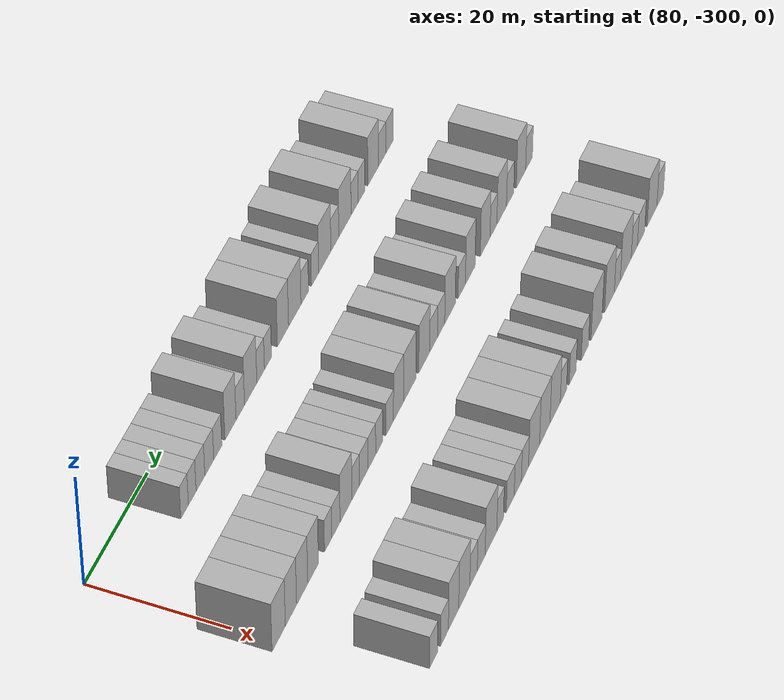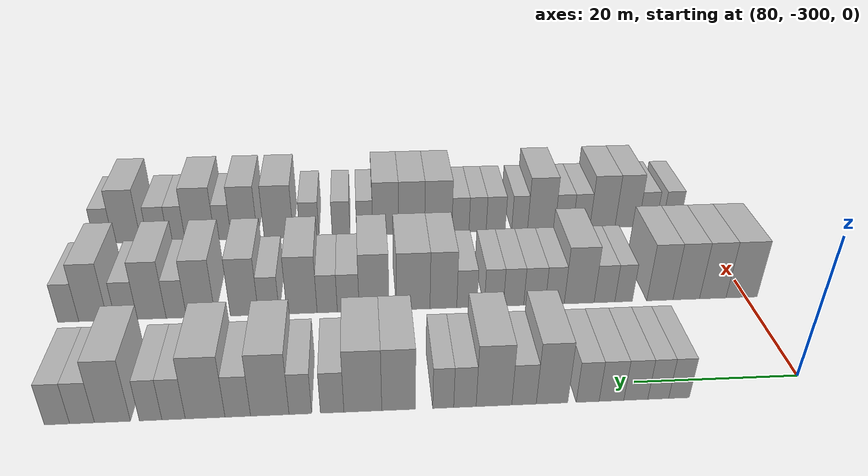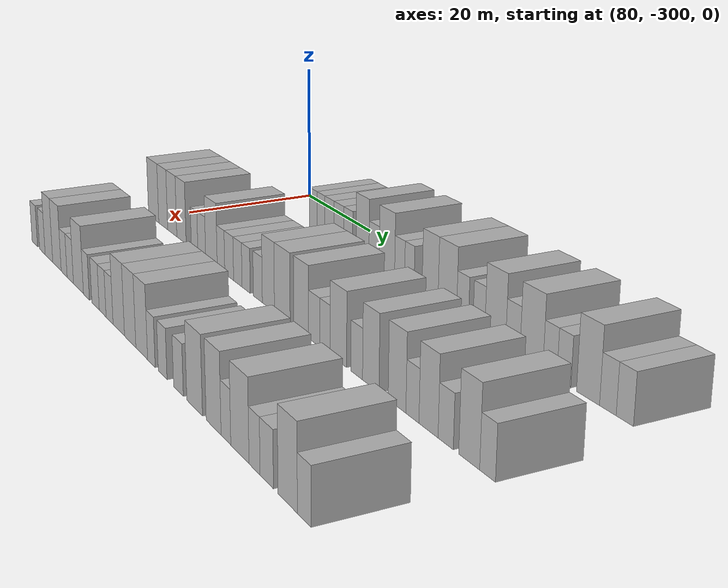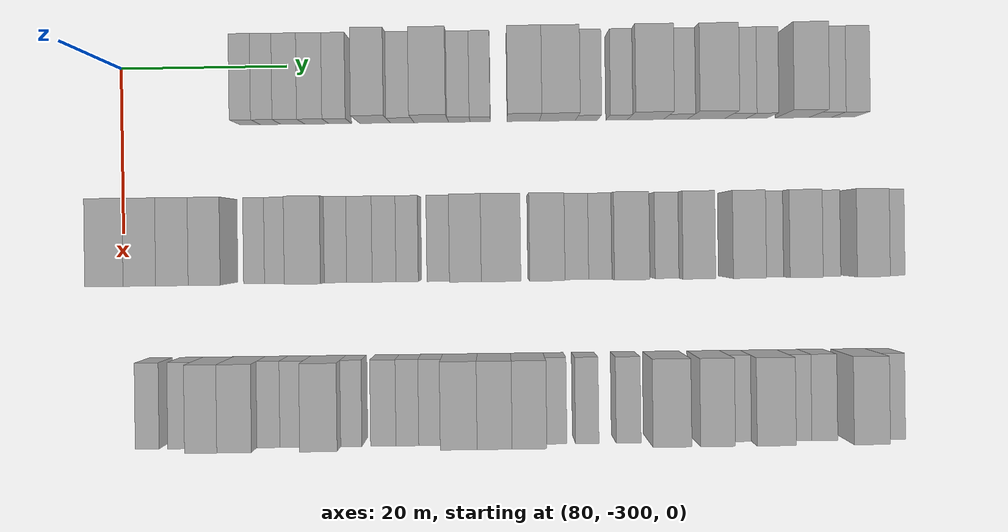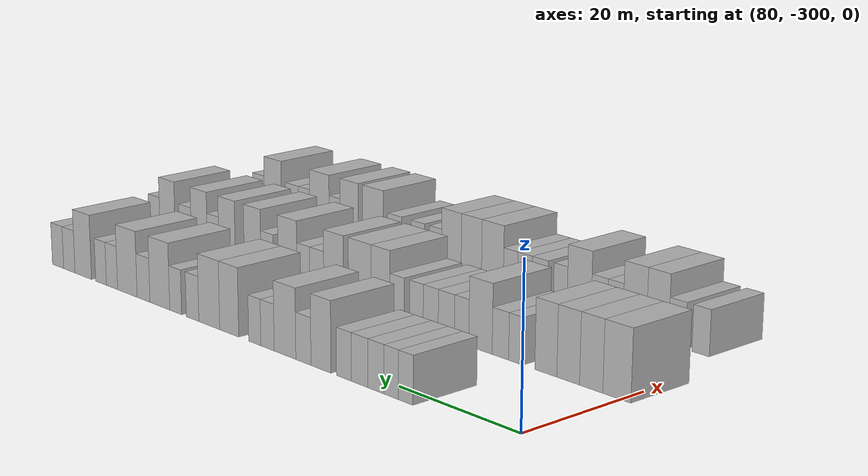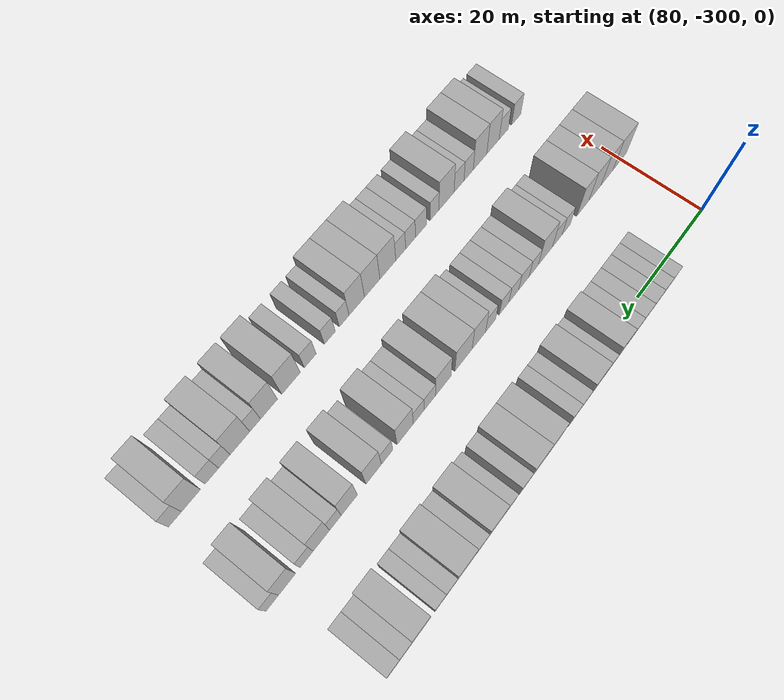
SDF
<sdf version="1.6">
 <world name="default">
  <model name="building_526">
   <static>1</static>
   <pose>82.0000 -284.4329 0 0.000000 0.000000 0.000000</pose>
   <link name="link">
    <pose>0 0 3.00 0 0 0</pose>
    <collision name="collision"><geometry><box><size>10.0000 2.4698 6.0000</size></box></geometry></collision>
    <visual name="visual">
     <cast_shadows>0</cast_shadows>
     <geometry><box><size>10.0000 2.4698 6.0000</size></box></geometry>
     <material>
      <script>
       <uri>model://HANNAS_wall/materials/scripts</uri>
       <uri>model://HANNAS_wall/materials/textures</uri>
       <name>vrc/HANNAS_wall</name>
      </script>
     </material>
    </visual>
   </link>
  </model>
  <model name="building_527">
   <static>1</static>
   <pose>82.0000 -281.9517 0 0.000000 0.000000 0.000000</pose>
   <link name="link">
    <pose>0 0 3.00 0 0 0</pose>
    <collision name="collision"><geometry><box><size>10.0000 2.4927 6.0000</size></box></geometry></collision>
    <visual name="visual">
     <cast_shadows>0</cast_shadows>
     <geometry><box><size>10.0000 2.4927 6.0000</size></box></geometry>
     <material>
      <script>
       <uri>model://HANNAS_wall/materials/scripts</uri>
       <uri>model://HANNAS_wall/materials/textures</uri>
       <name>vrc/HANNAS_wall</name>
      </script>
     </material>
    </visual>
   </link>
  </model>
  <model name="building_528">
   <static>1</static>
   <pose>82.0000 -279.2812 0 0.000000 0.000000 0.000000</pose>
   <link name="link">
    <pose>0 0 3.00 0 0 0</pose>
    <collision name="collision"><geometry><box><size>10.0000 2.8483 6.0000</size></box></geometry></collision>
    <visual name="visual">
     <cast_shadows>0</cast_shadows>
     <geometry><box><size>10.0000 2.8483 6.0000</size></box></geometry>
     <material>
      <script>
       <uri>model://HANNAS_wall/materials/scripts</uri>
       <uri>model://HANNAS_wall/materials/textures</uri>
       <name>vrc/HANNAS_wall</name>
      </script>
     </material>
    </visual>
   </link>
  </model>
  <model name="building_529">
   <static>1</static>
   <pose>82.0000 -276.3931 0 0.000000 0.000000 0.000000</pose>
   <link name="link">
    <pose>0 0 3.00 0 0 0</pose>
    <collision name="collision"><geometry><box><size>10.0000 2.9280 6.0000</size></box></geometry></collision>
    <visual name="visual">
     <cast_shadows>0</cast_shadows>
     <geometry><box><size>10.0000 2.9280 6.0000</size></box></geometry>
     <material>
      <script>
       <uri>model://HANNAS_wall/materials/scripts</uri>
       <uri>model://HANNAS_wall/materials/textures</uri>
       <name>vrc/HANNAS_wall</name>
      </script>
     </material>
    </visual>
   </link>
  </model>
  <model name="building_530">
   <static>1</static>
   <pose>82.0000 -273.5804 0 0.000000 0.000000 0.000000</pose>
   <link name="link">
    <pose>0 0 3.00 0 0 0</pose>
    <collision name="collision"><geometry><box><size>10.0000 2.6973 6.0000</size></box></geometry></collision>
    <visual name="visual">
     <cast_shadows>0</cast_shadows>
     <geometry><box><size>10.0000 2.6973 6.0000</size></box></geometry>
     <material>
      <script>
       <uri>model://HANNAS_wall/materials/scripts</uri>
       <uri>model://HANNAS_wall/materials/textures</uri>
       <name>vrc/HANNAS_wall</name>
      </script>
     </material>
    </visual>
   </link>
  </model>
  <model name="building_531">
   <static>1</static>
   <pose>82.0000 -269.3748 0 0.000000 0.000000 0.000000</pose>
   <link name="link">
    <pose>0 0 4.50 0 0 0</pose>
    <collision name="collision"><geometry><box><size>10.0000 3.7138 9.0000</size></box></geometry></collision>
    <visual name="visual">
     <cast_shadows>0</cast_shadows>
     <geometry><box><size>10.0000 3.7138 9.0000</size></box></geometry>
     <material>
      <script>
       <uri>model://HANNAS_wall/materials/scripts</uri>
       <uri>model://HANNAS_wall/materials/textures</uri>
       <name>vrc/HANNAS_wall</name>
      </script>
     </material>
    </visual>
   </link>
  </model>
  <model name="building_532">
   <static>1</static>
   <pose>82.0000 -266.0852 0 0.000000 0.000000 0.000000</pose>
   <link name="link">
    <pose>0 0 3.00 0 0 0</pose>
    <collision name="collision"><geometry><box><size>10.0000 2.8654 6.0000</size></box></geometry></collision>
    <visual name="visual">
     <cast_shadows>0</cast_shadows>
     <geometry><box><size>10.0000 2.8654 6.0000</size></box></geometry>
     <material>
      <script>
       <uri>model://HANNAS_wall/materials/scripts</uri>
       <uri>model://HANNAS_wall/materials/textures</uri>
       <name>vrc/HANNAS_wall</name>
      </script>
     </material>
    </visual>
   </link>
  </model>
  <model name="building_533">
   <static>1</static>
   <pose>82.0000 -262.5669 0 0.000000 0.000000 0.000000</pose>
   <link name="link">
    <pose>0 0 4.50 0 0 0</pose>
    <collision name="collision"><geometry><box><size>10.0000 4.1712 9.0000</size></box></geometry></collision>
    <visual name="visual">
     <cast_shadows>0</cast_shadows>
     <geometry><box><size>10.0000 4.1712 9.0000</size></box></geometry>
     <material>
      <script>
       <uri>model://HANNAS_wall/materials/scripts</uri>
       <uri>model://HANNAS_wall/materials/textures</uri>
       <name>vrc/HANNAS_wall</name>
      </script>
     </material>
    </visual>
   </link>
  </model>
  <model name="building_534">
   <static>1</static>
   <pose>82.0000 -259.1760 0 0.000000 0.000000 0.000000</pose>
   <link name="link">
    <pose>0 0 3.00 0 0 0</pose>
    <collision name="collision"><geometry><box><size>10.0000 2.6106 6.0000</size></box></geometry></collision>
    <visual name="visual">
     <cast_shadows>0</cast_shadows>
     <geometry><box><size>10.0000 2.6106 6.0000</size></box></geometry>
     <material>
      <script>
       <uri>model://HANNAS_wall/materials/scripts</uri>
       <uri>model://HANNAS_wall/materials/textures</uri>
       <name>vrc/HANNAS_wall</name>
      </script>
     </material>
    </visual>
   </link>
  </model>
  <model name="building_535">
   <static>1</static>
   <pose>82.0000 -256.6536 0 0.000000 0.000000 0.000000</pose>
   <link name="link">
    <pose>0 0 3.00 0 0 0</pose>
    <collision name="collision"><geometry><box><size>10.0000 2.4341 6.0000</size></box></geometry></collision>
    <visual name="visual">
     <cast_shadows>0</cast_shadows>
     <geometry><box><size>10.0000 2.4341 6.0000</size></box></geometry>
     <material>
      <script>
       <uri>model://HANNAS_wall/materials/scripts</uri>
       <uri>model://HANNAS_wall/materials/textures</uri>
       <name>vrc/HANNAS_wall</name>
      </script>
     </material>
    </visual>
   </link>
  </model>
  <model name="building_536">
   <static>1</static>
   <pose>82.0000 -251.4886 0 0.000000 0.000000 0.000000</pose>
   <link name="link">
    <pose>0 0 4.50 0 0 0</pose>
    <collision name="collision"><geometry><box><size>10.0000 3.8959 9.0000</size></box></geometry></collision>
    <visual name="visual">
     <cast_shadows>0</cast_shadows>
     <geometry><box><size>10.0000 3.8959 9.0000</size></box></geometry>
     <material>
      <script>
       <uri>model://HANNAS_wall/materials/scripts</uri>
       <uri>model://HANNAS_wall/materials/textures</uri>
       <name>vrc/HANNAS_wall</name>
      </script>
     </material>
    </visual>
   </link>
  </model>
  <model name="building_537">
   <static>1</static>
   <pose>82.0000 -247.3610 0 0.000000 0.000000 0.000000</pose>
   <link name="link">
    <pose>0 0 4.50 0 0 0</pose>
    <collision name="collision"><geometry><box><size>10.0000 4.3593 9.0000</size></box></geometry></collision>
    <visual name="visual">
     <cast_shadows>0</cast_shadows>
     <geometry><box><size>10.0000 4.3593 9.0000</size></box></geometry>
     <material>
      <script>
       <uri>model://HANNAS_wall/materials/scripts</uri>
       <uri>model://HANNAS_wall/materials/textures</uri>
       <name>vrc/HANNAS_wall</name>
      </script>
     </material>
    </visual>
   </link>
  </model>
  <model name="building_538">
   <static>1</static>
   <pose>82.0000 -243.8351 0 0.000000 0.000000 0.000000</pose>
   <link name="link">
    <pose>0 0 3.00 0 0 0</pose>
    <collision name="collision"><geometry><box><size>10.0000 2.6925 6.0000</size></box></geometry></collision>
    <visual name="visual">
     <cast_shadows>0</cast_shadows>
     <geometry><box><size>10.0000 2.6925 6.0000</size></box></geometry>
     <material>
      <script>
       <uri>model://HANNAS_wall/materials/scripts</uri>
       <uri>model://HANNAS_wall/materials/textures</uri>
       <name>vrc/HANNAS_wall</name>
      </script>
     </material>
    </visual>
   </link>
  </model>
  <model name="building_539">
   <static>1</static>
   <pose>82.0000 -240.1941 0 0.000000 0.000000 0.000000</pose>
   <link name="link">
    <pose>0 0 3.00 0 0 0</pose>
    <collision name="collision"><geometry><box><size>10.0000 2.5895 6.0000</size></box></geometry></collision>
    <visual name="visual">
     <cast_shadows>0</cast_shadows>
     <geometry><box><size>10.0000 2.5895 6.0000</size></box></geometry>
     <material>
      <script>
       <uri>model://HANNAS_wall/materials/scripts</uri>
       <uri>model://HANNAS_wall/materials/textures</uri>
       <name>vrc/HANNAS_wall</name>
      </script>
     </material>
    </visual>
   </link>
  </model>
  <model name="building_540">
   <static>1</static>
   <pose>82.0000 -236.7106 0 0.000000 0.000000 0.000000</pose>
   <link name="link">
    <pose>0 0 4.50 0 0 0</pose>
    <collision name="collision"><geometry><box><size>10.0000 4.3775 9.0000</size></box></geometry></collision>
    <visual name="visual">
     <cast_shadows>0</cast_shadows>
     <geometry><box><size>10.0000 4.3775 9.0000</size></box></geometry>
     <material>
      <script>
       <uri>model://HANNAS_wall/materials/scripts</uri>
       <uri>model://HANNAS_wall/materials/textures</uri>
       <name>vrc/HANNAS_wall</name>
      </script>
     </material>
    </visual>
   </link>
  </model>
  <model name="building_541">
   <static>1</static>
   <pose>82.0000 -233.0728 0 0.000000 0.000000 0.000000</pose>
   <link name="link">
    <pose>0 0 3.00 0 0 0</pose>
    <collision name="collision"><geometry><box><size>10.0000 2.8980 6.0000</size></box></geometry></collision>
    <visual name="visual">
     <cast_shadows>0</cast_shadows>
     <geometry><box><size>10.0000 2.8980 6.0000</size></box></geometry>
     <material>
      <script>
       <uri>model://HANNAS_wall/materials/scripts</uri>
       <uri>model://HANNAS_wall/materials/textures</uri>
       <name>vrc/HANNAS_wall</name>
      </script>
     </material>
    </visual>
   </link>
  </model>
  <model name="building_542">
   <static>1</static>
   <pose>82.0000 -229.3777 0 0.000000 0.000000 0.000000</pose>
   <link name="link">
    <pose>0 0 4.50 0 0 0</pose>
    <collision name="collision"><geometry><box><size>10.0000 4.4922 9.0000</size></box></geometry></collision>
    <visual name="visual">
     <cast_shadows>0</cast_shadows>
     <geometry><box><size>10.0000 4.4922 9.0000</size></box></geometry>
     <material>
      <script>
       <uri>model://HANNAS_wall/materials/scripts</uri>
       <uri>model://HANNAS_wall/materials/textures</uri>
       <name>vrc/HANNAS_wall</name>
      </script>
     </material>
    </visual>
   </link>
  </model>
  <model name="building_543">
   <static>1</static>
   <pose>82.0000 -225.8178 0 0.000000 0.000000 0.000000</pose>
   <link name="link">
    <pose>0 0 3.00 0 0 0</pose>
    <collision name="collision"><geometry><box><size>10.0000 2.6275 6.0000</size></box></geometry></collision>
    <visual name="visual">
     <cast_shadows>0</cast_shadows>
     <geometry><box><size>10.0000 2.6275 6.0000</size></box></geometry>
     <material>
      <script>
       <uri>model://HANNAS_wall/materials/scripts</uri>
       <uri>model://HANNAS_wall/materials/textures</uri>
       <name>vrc/HANNAS_wall</name>
      </script>
     </material>
    </visual>
   </link>
  </model>
  <model name="building_544">
   <static>1</static>
   <pose>82.0000 -223.2350 0 0.000000 0.000000 0.000000</pose>
   <link name="link">
    <pose>0 0 3.00 0 0 0</pose>
    <collision name="collision"><geometry><box><size>10.0000 2.5381 6.0000</size></box></geometry></collision>
    <visual name="visual">
     <cast_shadows>0</cast_shadows>
     <geometry><box><size>10.0000 2.5381 6.0000</size></box></geometry>
     <material>
      <script>
       <uri>model://HANNAS_wall/materials/scripts</uri>
       <uri>model://HANNAS_wall/materials/textures</uri>
       <name>vrc/HANNAS_wall</name>
      </script>
     </material>
    </visual>
   </link>
  </model>
  <model name="building_545">
   <static>1</static>
   <pose>82.0000 -218.9621 0 0.000000 0.000000 0.000000</pose>
   <link name="link">
    <pose>0 0 4.50 0 0 0</pose>
    <collision name="collision"><geometry><box><size>10.0000 4.0076 9.0000</size></box></geometry></collision>
    <visual name="visual">
     <cast_shadows>0</cast_shadows>
     <geometry><box><size>10.0000 4.0076 9.0000</size></box></geometry>
     <material>
      <script>
       <uri>model://HANNAS_wall/materials/scripts</uri>
       <uri>model://HANNAS_wall/materials/textures</uri>
       <name>vrc/HANNAS_wall</name>
      </script>
     </material>
    </visual>
   </link>
  </model>
  <model name="building_546">
   <static>1</static>
   <pose>82.0000 -215.5682 0 0.000000 0.000000 0.000000</pose>
   <link name="link">
    <pose>0 0 3.00 0 0 0</pose>
    <collision name="collision"><geometry><box><size>10.0000 2.7802 6.0000</size></box></geometry></collision>
    <visual name="visual">
     <cast_shadows>0</cast_shadows>
     <geometry><box><size>10.0000 2.7802 6.0000</size></box></geometry>
     <material>
      <script>
       <uri>model://HANNAS_wall/materials/scripts</uri>
       <uri>model://HANNAS_wall/materials/textures</uri>
       <name>vrc/HANNAS_wall</name>
      </script>
     </material>
    </visual>
   </link>
  </model>
  <model name="building_547">
   <static>1</static>
   <pose>82.0000 -212.7780 0 0.000000 0.000000 0.000000</pose>
   <link name="link">
    <pose>0 0 3.00 0 0 0</pose>
    <collision name="collision"><geometry><box><size>10.0000 2.8003 6.0000</size></box></geometry></collision>
    <visual name="visual">
     <cast_shadows>0</cast_shadows>
     <geometry><box><size>10.0000 2.8003 6.0000</size></box></geometry>
     <material>
      <script>
       <uri>model://HANNAS_wall/materials/scripts</uri>
       <uri>model://HANNAS_wall/materials/textures</uri>
       <name>vrc/HANNAS_wall</name>
      </script>
     </material>
    </visual>
   </link>
  </model>
  <model name="building_702">
   <static>1</static>
   <pose>101.0000 -299.3965 0 0.000000 0.000000 0.000000</pose>
   <link name="link">
    <pose>0 0 4.50 0 0 0</pose>
    <collision name="collision"><geometry><box><size>10.0000 4.3397 9.0000</size></box></geometry></collision>
    <visual name="visual">
     <cast_shadows>0</cast_shadows>
     <geometry><box><size>10.0000 4.3397 9.0000</size></box></geometry>
     <material>
      <script>
       <uri>model://HANNAS_wall/materials/scripts</uri>
       <uri>model://HANNAS_wall/materials/textures</uri>
       <name>vrc/HANNAS_wall</name>
      </script>
     </material>
    </visual>
   </link>
  </model>
  <model name="building_703">
   <static>1</static>
   <pose>101.0000 -295.3795 0 0.000000 0.000000 0.000000</pose>
   <link name="link">
    <pose>0 0 4.50 0 0 0</pose>
    <collision name="collision"><geometry><box><size>10.0000 3.6944 9.0000</size></box></geometry></collision>
    <visual name="visual">
     <cast_shadows>0</cast_shadows>
     <geometry><box><size>10.0000 3.6944 9.0000</size></box></geometry>
     <material>
      <script>
       <uri>model://HANNAS_wall/materials/scripts</uri>
       <uri>model://HANNAS_wall/materials/textures</uri>
       <name>vrc/HANNAS_wall</name>
      </script>
     </material>
    </visual>
   </link>
  </model>
  <model name="building_704">
   <static>1</static>
   <pose>101.0000 -291.6914 0 0.000000 0.000000 0.000000</pose>
   <link name="link">
    <pose>0 0 4.50 0 0 0</pose>
    <collision name="collision"><geometry><box><size>10.0000 3.6819 9.0000</size></box></geometry></collision>
    <visual name="visual">
     <cast_shadows>0</cast_shadows>
     <geometry><box><size>10.0000 3.6819 9.0000</size></box></geometry>
     <material>
      <script>
       <uri>model://HANNAS_wall/materials/scripts</uri>
       <uri>model://HANNAS_wall/materials/textures</uri>
       <name>vrc/HANNAS_wall</name>
      </script>
     </material>
    </visual>
   </link>
  </model>
  <model name="building_705">
   <static>1</static>
   <pose>101.0000 -288.0410 0 0.000000 0.000000 0.000000</pose>
   <link name="link">
    <pose>0 0 4.50 0 0 0</pose>
    <collision name="collision"><geometry><box><size>10.0000 3.6188 9.0000</size></box></geometry></collision>
    <visual name="visual">
     <cast_shadows>0</cast_shadows>
     <geometry><box><size>10.0000 3.6188 9.0000</size></box></geometry>
     <material>
      <script>
       <uri>model://HANNAS_wall/materials/scripts</uri>
       <uri>model://HANNAS_wall/materials/textures</uri>
       <name>vrc/HANNAS_wall</name>
      </script>
     </material>
    </visual>
   </link>
  </model>
  <model name="building_706">
   <static>1</static>
   <pose>101.0000 -283.0204 0 0.000000 0.000000 0.000000</pose>
   <link name="link">
    <pose>0 0 3.00 0 0 0</pose>
    <collision name="collision"><geometry><box><size>10.0000 2.4225 6.0000</size></box></geometry></collision>
    <visual name="visual">
     <cast_shadows>0</cast_shadows>
     <geometry><box><size>10.0000 2.4225 6.0000</size></box></geometry>
     <material>
      <script>
       <uri>model://HANNAS_wall/materials/scripts</uri>
       <uri>model://HANNAS_wall/materials/textures</uri>
       <name>vrc/HANNAS_wall</name>
      </script>
     </material>
    </visual>
   </link>
  </model>
  <model name="building_707">
   <static>1</static>
   <pose>101.0000 -280.3881 0 0.000000 0.000000 0.000000</pose>
   <link name="link">
    <pose>0 0 3.00 0 0 0</pose>
    <collision name="collision"><geometry><box><size>10.0000 2.8422 6.0000</size></box></geometry></collision>
    <visual name="visual">
     <cast_shadows>0</cast_shadows>
     <geometry><box><size>10.0000 2.8422 6.0000</size></box></geometry>
     <material>
      <script>
       <uri>model://HANNAS_wall/materials/scripts</uri>
       <uri>model://HANNAS_wall/materials/textures</uri>
       <name>vrc/HANNAS_wall</name>
      </script>
     </material>
    </visual>
   </link>
  </model>
  <model name="building_708">
   <static>1</static>
   <pose>101.0000 -276.9197 0 0.000000 0.000000 0.000000</pose>
   <link name="link">
    <pose>0 0 4.50 0 0 0</pose>
    <collision name="collision"><geometry><box><size>10.0000 4.0945 9.0000</size></box></geometry></collision>
    <visual name="visual">
     <cast_shadows>0</cast_shadows>
     <geometry><box><size>10.0000 4.0945 9.0000</size></box></geometry>
     <material>
      <script>
       <uri>model://HANNAS_wall/materials/scripts</uri>
       <uri>model://HANNAS_wall/materials/textures</uri>
       <name>vrc/HANNAS_wall</name>
      </script>
     </material>
    </visual>
   </link>
  </model>
  <model name="building_709">
   <static>1</static>
   <pose>101.0000 -273.5784 0 0.000000 0.000000 0.000000</pose>
   <link name="link">
    <pose>0 0 3.00 0 0 0</pose>
    <collision name="collision"><geometry><box><size>10.0000 2.5881 6.0000</size></box></geometry></collision>
    <visual name="visual">
     <cast_shadows>0</cast_shadows>
     <geometry><box><size>10.0000 2.5881 6.0000</size></box></geometry>
     <material>
      <script>
       <uri>model://HANNAS_wall/materials/scripts</uri>
       <uri>model://HANNAS_wall/materials/textures</uri>
       <name>vrc/HANNAS_wall</name>
      </script>
     </material>
    </visual>
   </link>
  </model>
  <model name="building_710">
   <static>1</static>
   <pose>101.0000 -270.8112 0 0.000000 0.000000 0.000000</pose>
   <link name="link">
    <pose>0 0 3.00 0 0 0</pose>
    <collision name="collision"><geometry><box><size>10.0000 2.9464 6.0000</size></box></geometry></collision>
    <visual name="visual">
     <cast_shadows>0</cast_shadows>
     <geometry><box><size>10.0000 2.9464 6.0000</size></box></geometry>
     <material>
      <script>
       <uri>model://HANNAS_wall/materials/scripts</uri>
       <uri>model://HANNAS_wall/materials/textures</uri>
       <name>vrc/HANNAS_wall</name>
      </script>
     </material>
    </visual>
   </link>
  </model>
  <model name="building_711">
   <static>1</static>
   <pose>101.0000 -267.9586 0 0.000000 0.000000 0.000000</pose>
   <link name="link">
    <pose>0 0 3.00 0 0 0</pose>
    <collision name="collision"><geometry><box><size>10.0000 2.7590 6.0000</size></box></geometry></collision>
    <visual name="visual">
     <cast_shadows>0</cast_shadows>
     <geometry><box><size>10.0000 2.7590 6.0000</size></box></geometry>
     <material>
      <script>
       <uri>model://HANNAS_wall/materials/scripts</uri>
       <uri>model://HANNAS_wall/materials/textures</uri>
       <name>vrc/HANNAS_wall</name>
      </script>
     </material>
    </visual>
   </link>
  </model>
  <model name="building_712">
   <static>1</static>
   <pose>101.0000 -265.2867 0 0.000000 0.000000 0.000000</pose>
   <link name="link">
    <pose>0 0 3.00 0 0 0</pose>
    <collision name="collision"><geometry><box><size>10.0000 2.5847 6.0000</size></box></geometry></collision>
    <visual name="visual">
     <cast_shadows>0</cast_shadows>
     <geometry><box><size>10.0000 2.5847 6.0000</size></box></geometry>
     <material>
      <script>
       <uri>model://HANNAS_wall/materials/scripts</uri>
       <uri>model://HANNAS_wall/materials/textures</uri>
       <name>vrc/HANNAS_wall</name>
      </script>
     </material>
    </visual>
   </link>
  </model>
  <model name="building_713">
   <static>1</static>
   <pose>101.0000 -261.6266 0 0.000000 0.000000 0.000000</pose>
   <link name="link">
    <pose>0 0 3.00 0 0 0</pose>
    <collision name="collision"><geometry><box><size>10.0000 2.7356 6.0000</size></box></geometry></collision>
    <visual name="visual">
     <cast_shadows>0</cast_shadows>
     <geometry><box><size>10.0000 2.7356 6.0000</size></box></geometry>
     <material>
      <script>
       <uri>model://HANNAS_wall/materials/scripts</uri>
       <uri>model://HANNAS_wall/materials/textures</uri>
       <name>vrc/HANNAS_wall</name>
      </script>
     </material>
    </visual>
   </link>
  </model>
  <model name="building_714">
   <static>1</static>
   <pose>101.0000 -258.4552 0 0.000000 0.000000 0.000000</pose>
   <link name="link">
    <pose>0 0 4.50 0 0 0</pose>
    <collision name="collision"><geometry><box><size>10.0000 3.6072 9.0000</size></box></geometry></collision>
    <visual name="visual">
     <cast_shadows>0</cast_shadows>
     <geometry><box><size>10.0000 3.6072 9.0000</size></box></geometry>
     <material>
      <script>
       <uri>model://HANNAS_wall/materials/scripts</uri>
       <uri>model://HANNAS_wall/materials/textures</uri>
       <name>vrc/HANNAS_wall</name>
      </script>
     </material>
    </visual>
   </link>
  </model>
  <model name="building_715">
   <static>1</static>
   <pose>101.0000 -254.4053 0 0.000000 0.000000 0.000000</pose>
   <link name="link">
    <pose>0 0 4.50 0 0 0</pose>
    <collision name="collision"><geometry><box><size>10.0000 4.4926 9.0000</size></box></geometry></collision>
    <visual name="visual">
     <cast_shadows>0</cast_shadows>
     <geometry><box><size>10.0000 4.4926 9.0000</size></box></geometry>
     <material>
      <script>
       <uri>model://HANNAS_wall/materials/scripts</uri>
       <uri>model://HANNAS_wall/materials/textures</uri>
       <name>vrc/HANNAS_wall</name>
      </script>
     </material>
    </visual>
   </link>
  </model>
  <model name="building_716">
   <static>1</static>
   <pose>101.0000 -249.1616 0 0.000000 0.000000 0.000000</pose>
   <link name="link">
    <pose>0 0 4.50 0 0 0</pose>
    <collision name="collision"><geometry><box><size>10.0000 3.9947 9.0000</size></box></geometry></collision>
    <visual name="visual">
     <cast_shadows>0</cast_shadows>
     <geometry><box><size>10.0000 3.9947 9.0000</size></box></geometry>
     <material>
      <script>
       <uri>model://HANNAS_wall/materials/scripts</uri>
       <uri>model://HANNAS_wall/materials/textures</uri>
       <name>vrc/HANNAS_wall</name>
      </script>
     </material>
    </visual>
   </link>
  </model>
  <model name="building_717">
   <static>1</static>
   <pose>101.0000 -245.7098 0 0.000000 0.000000 0.000000</pose>
   <link name="link">
    <pose>0 0 3.00 0 0 0</pose>
    <collision name="collision"><geometry><box><size>10.0000 2.9088 6.0000</size></box></geometry></collision>
    <visual name="visual">
     <cast_shadows>0</cast_shadows>
     <geometry><box><size>10.0000 2.9088 6.0000</size></box></geometry>
     <material>
      <script>
       <uri>model://HANNAS_wall/materials/scripts</uri>
       <uri>model://HANNAS_wall/materials/textures</uri>
       <name>vrc/HANNAS_wall</name>
      </script>
     </material>
    </visual>
   </link>
  </model>
  <model name="building_718">
   <static>1</static>
   <pose>101.0000 -242.9103 0 0.000000 0.000000 0.000000</pose>
   <link name="link">
    <pose>0 0 3.00 0 0 0</pose>
    <collision name="collision"><geometry><box><size>10.0000 2.6903 6.0000</size></box></geometry></collision>
    <visual name="visual">
     <cast_shadows>0</cast_shadows>
     <geometry><box><size>10.0000 2.6903 6.0000</size></box></geometry>
     <material>
      <script>
       <uri>model://HANNAS_wall/materials/scripts</uri>
       <uri>model://HANNAS_wall/materials/textures</uri>
       <name>vrc/HANNAS_wall</name>
      </script>
     </material>
    </visual>
   </link>
  </model>
  <model name="building_719">
   <static>1</static>
   <pose>101.0000 -239.5597 0 0.000000 0.000000 0.000000</pose>
   <link name="link">
    <pose>0 0 4.50 0 0 0</pose>
    <collision name="collision"><geometry><box><size>10.0000 4.0108 9.0000</size></box></geometry></collision>
    <visual name="visual">
     <cast_shadows>0</cast_shadows>
     <geometry><box><size>10.0000 4.0108 9.0000</size></box></geometry>
     <material>
      <script>
       <uri>model://HANNAS_wall/materials/scripts</uri>
       <uri>model://HANNAS_wall/materials/textures</uri>
       <name>vrc/HANNAS_wall</name>
      </script>
     </material>
    </visual>
   </link>
  </model>
  <model name="building_720">
   <static>1</static>
   <pose>101.0000 -235.1753 0 0.000000 0.000000 0.000000</pose>
   <link name="link">
    <pose>0 0 3.00 0 0 0</pose>
    <collision name="collision"><geometry><box><size>10.0000 2.7579 6.0000</size></box></geometry></collision>
    <visual name="visual">
     <cast_shadows>0</cast_shadows>
     <geometry><box><size>10.0000 2.7579 6.0000</size></box></geometry>
     <material>
      <script>
       <uri>model://HANNAS_wall/materials/scripts</uri>
       <uri>model://HANNAS_wall/materials/textures</uri>
       <name>vrc/HANNAS_wall</name>
      </script>
     </material>
    </visual>
   </link>
  </model>
  <model name="building_721">
   <static>1</static>
   <pose>101.0000 -231.9455 0 0.000000 0.000000 0.000000</pose>
   <link name="link">
    <pose>0 0 4.50 0 0 0</pose>
    <collision name="collision"><geometry><box><size>10.0000 3.7016 9.0000</size></box></geometry></collision>
    <visual name="visual">
     <cast_shadows>0</cast_shadows>
     <geometry><box><size>10.0000 3.7016 9.0000</size></box></geometry>
     <material>
      <script>
       <uri>model://HANNAS_wall/materials/scripts</uri>
       <uri>model://HANNAS_wall/materials/textures</uri>
       <name>vrc/HANNAS_wall</name>
      </script>
     </material>
    </visual>
   </link>
  </model>
  <model name="building_722">
   <static>1</static>
   <pose>101.0000 -226.2180 0 0.000000 0.000000 0.000000</pose>
   <link name="link">
    <pose>0 0 4.50 0 0 0</pose>
    <collision name="collision"><geometry><box><size>10.0000 3.7534 9.0000</size></box></geometry></collision>
    <visual name="visual">
     <cast_shadows>0</cast_shadows>
     <geometry><box><size>10.0000 3.7534 9.0000</size></box></geometry>
     <material>
      <script>
       <uri>model://HANNAS_wall/materials/scripts</uri>
       <uri>model://HANNAS_wall/materials/textures</uri>
       <name>vrc/HANNAS_wall</name>
      </script>
     </material>
    </visual>
   </link>
  </model>
  <model name="building_723">
   <static>1</static>
   <pose>101.0000 -223.0095 0 0.000000 0.000000 0.000000</pose>
   <link name="link">
    <pose>0 0 3.00 0 0 0</pose>
    <collision name="collision"><geometry><box><size>10.0000 2.6635 6.0000</size></box></geometry></collision>
    <visual name="visual">
     <cast_shadows>0</cast_shadows>
     <geometry><box><size>10.0000 2.6635 6.0000</size></box></geometry>
     <material>
      <script>
       <uri>model://HANNAS_wall/materials/scripts</uri>
       <uri>model://HANNAS_wall/materials/textures</uri>
       <name>vrc/HANNAS_wall</name>
      </script>
     </material>
    </visual>
   </link>
  </model>
  <model name="building_724">
   <static>1</static>
   <pose>101.0000 -219.8018 0 0.000000 0.000000 0.000000</pose>
   <link name="link">
    <pose>0 0 4.50 0 0 0</pose>
    <collision name="collision"><geometry><box><size>10.0000 3.7519 9.0000</size></box></geometry></collision>
    <visual name="visual">
     <cast_shadows>0</cast_shadows>
     <geometry><box><size>10.0000 3.7519 9.0000</size></box></geometry>
     <material>
      <script>
       <uri>model://HANNAS_wall/materials/scripts</uri>
       <uri>model://HANNAS_wall/materials/textures</uri>
       <name>vrc/HANNAS_wall</name>
      </script>
     </material>
    </visual>
   </link>
  </model>
  <model name="building_725">
   <static>1</static>
   <pose>101.0000 -216.4906 0 0.000000 0.000000 0.000000</pose>
   <link name="link">
    <pose>0 0 3.00 0 0 0</pose>
    <collision name="collision"><geometry><box><size>10.0000 2.8705 6.0000</size></box></geometry></collision>
    <visual name="visual">
     <cast_shadows>0</cast_shadows>
     <geometry><box><size>10.0000 2.8705 6.0000</size></box></geometry>
     <material>
      <script>
       <uri>model://HANNAS_wall/materials/scripts</uri>
       <uri>model://HANNAS_wall/materials/textures</uri>
       <name>vrc/HANNAS_wall</name>
      </script>
     </material>
    </visual>
   </link>
  </model>
  <model name="building_726">
   <static>1</static>
   <pose>101.0000 -212.1906 0 0.000000 0.000000 0.000000</pose>
   <link name="link">
    <pose>0 0 4.50 0 0 0</pose>
    <collision name="collision"><geometry><box><size>10.0000 3.7295 9.0000</size></box></geometry></collision>
    <visual name="visual">
     <cast_shadows>0</cast_shadows>
     <geometry><box><size>10.0000 3.7295 9.0000</size></box></geometry>
     <material>
      <script>
       <uri>model://HANNAS_wall/materials/scripts</uri>
       <uri>model://HANNAS_wall/materials/textures</uri>
       <name>vrc/HANNAS_wall</name>
      </script>
     </material>
    </visual>
   </link>
  </model>
  <model name="building_727">
   <static>1</static>
   <pose>101.0000 -208.9675 0 0.000000 0.000000 0.000000</pose>
   <link name="link">
    <pose>0 0 3.00 0 0 0</pose>
    <collision name="collision"><geometry><box><size>10.0000 2.7167 6.0000</size></box></geometry></collision>
    <visual name="visual">
     <cast_shadows>0</cast_shadows>
     <geometry><box><size>10.0000 2.7167 6.0000</size></box></geometry>
     <material>
      <script>
       <uri>model://HANNAS_wall/materials/scripts</uri>
       <uri>model://HANNAS_wall/materials/textures</uri>
       <name>vrc/HANNAS_wall</name>
      </script>
     </material>
    </visual>
   </link>
  </model>
  <model name="building_867">
   <static>1</static>
   <pose>120.0000 -295.6457 0 0.000000 0.000000 0.000000</pose>
   <link name="link">
    <pose>0 0 3.00 0 0 0</pose>
    <collision name="collision"><geometry><box><size>10.0000 2.7687 6.0000</size></box></geometry></collision>
    <visual name="visual">
     <cast_shadows>0</cast_shadows>
     <geometry><box><size>10.0000 2.7687 6.0000</size></box></geometry>
     <material>
      <script>
       <uri>model://HANNAS_wall/materials/scripts</uri>
       <uri>model://HANNAS_wall/materials/textures</uri>
       <name>vrc/HANNAS_wall</name>
      </script>
     </material>
    </visual>
   </link>
  </model>
  <model name="building_868">
   <static>1</static>
   <pose>120.0000 -291.8860 0 0.000000 0.000000 0.000000</pose>
   <link name="link">
    <pose>0 0 3.00 0 0 0</pose>
    <collision name="collision"><geometry><box><size>10.0000 2.7508 6.0000</size></box></geometry></collision>
    <visual name="visual">
     <cast_shadows>0</cast_shadows>
     <geometry><box><size>10.0000 2.7508 6.0000</size></box></geometry>
     <material>
      <script>
       <uri>model://HANNAS_wall/materials/scripts</uri>
       <uri>model://HANNAS_wall/materials/textures</uri>
       <name>vrc/HANNAS_wall</name>
      </script>
     </material>
    </visual>
   </link>
  </model>
  <model name="building_869">
   <static>1</static>
   <pose>120.0000 -288.6821 0 0.000000 0.000000 0.000000</pose>
   <link name="link">
    <pose>0 0 4.50 0 0 0</pose>
    <collision name="collision"><geometry><box><size>10.0000 3.6569 9.0000</size></box></geometry></collision>
    <visual name="visual">
     <cast_shadows>0</cast_shadows>
     <geometry><box><size>10.0000 3.6569 9.0000</size></box></geometry>
     <material>
      <script>
       <uri>model://HANNAS_wall/materials/scripts</uri>
       <uri>model://HANNAS_wall/materials/textures</uri>
       <name>vrc/HANNAS_wall</name>
      </script>
     </material>
    </visual>
   </link>
  </model>
  <model name="building_870">
   <static>1</static>
   <pose>120.0000 -284.8900 0 0.000000 0.000000 0.000000</pose>
   <link name="link">
    <pose>0 0 4.50 0 0 0</pose>
    <collision name="collision"><geometry><box><size>10.0000 3.9272 9.0000</size></box></geometry></collision>
    <visual name="visual">
     <cast_shadows>0</cast_shadows>
     <geometry><box><size>10.0000 3.9272 9.0000</size></box></geometry>
     <material>
      <script>
       <uri>model://HANNAS_wall/materials/scripts</uri>
       <uri>model://HANNAS_wall/materials/textures</uri>
       <name>vrc/HANNAS_wall</name>
      </script>
     </material>
    </visual>
   </link>
  </model>
  <model name="building_871">
   <static>1</static>
   <pose>120.0000 -281.5954 0 0.000000 0.000000 0.000000</pose>
   <link name="link">
    <pose>0 0 3.00 0 0 0</pose>
    <collision name="collision"><geometry><box><size>10.0000 2.6621 6.0000</size></box></geometry></collision>
    <visual name="visual">
     <cast_shadows>0</cast_shadows>
     <geometry><box><size>10.0000 2.6621 6.0000</size></box></geometry>
     <material>
      <script>
       <uri>model://HANNAS_wall/materials/scripts</uri>
       <uri>model://HANNAS_wall/materials/textures</uri>
       <name>vrc/HANNAS_wall</name>
      </script>
     </material>
    </visual>
   </link>
  </model>
  <model name="building_872">
   <static>1</static>
   <pose>120.0000 -278.8628 0 0.000000 0.000000 0.000000</pose>
   <link name="link">
    <pose>0 0 3.00 0 0 0</pose>
    <collision name="collision"><geometry><box><size>10.0000 2.8029 6.0000</size></box></geometry></collision>
    <visual name="visual">
     <cast_shadows>0</cast_shadows>
     <geometry><box><size>10.0000 2.8029 6.0000</size></box></geometry>
     <material>
      <script>
       <uri>model://HANNAS_wall/materials/scripts</uri>
       <uri>model://HANNAS_wall/materials/textures</uri>
       <name>vrc/HANNAS_wall</name>
      </script>
     </material>
    </visual>
   </link>
  </model>
  <model name="building_873">
   <static>1</static>
   <pose>120.0000 -275.3433 0 0.000000 0.000000 0.000000</pose>
   <link name="link">
    <pose>0 0 4.50 0 0 0</pose>
    <collision name="collision"><geometry><box><size>10.0000 4.2362 9.0000</size></box></geometry></collision>
    <visual name="visual">
     <cast_shadows>0</cast_shadows>
     <geometry><box><size>10.0000 4.2362 9.0000</size></box></geometry>
     <material>
      <script>
       <uri>model://HANNAS_wall/materials/scripts</uri>
       <uri>model://HANNAS_wall/materials/textures</uri>
       <name>vrc/HANNAS_wall</name>
      </script>
     </material>
    </visual>
   </link>
  </model>
  <model name="building_874">
   <static>1</static>
   <pose>120.0000 -271.9950 0 0.000000 0.000000 0.000000</pose>
   <link name="link">
    <pose>0 0 3.00 0 0 0</pose>
    <collision name="collision"><geometry><box><size>10.0000 2.4602 6.0000</size></box></geometry></collision>
    <visual name="visual">
     <cast_shadows>0</cast_shadows>
     <geometry><box><size>10.0000 2.4602 6.0000</size></box></geometry>
     <material>
      <script>
       <uri>model://HANNAS_wall/materials/scripts</uri>
       <uri>model://HANNAS_wall/materials/textures</uri>
       <name>vrc/HANNAS_wall</name>
      </script>
     </material>
    </visual>
   </link>
  </model>
  <model name="building_875">
   <static>1</static>
   <pose>120.0000 -268.2931 0 0.000000 0.000000 0.000000</pose>
   <link name="link">
    <pose>0 0 3.00 0 0 0</pose>
    <collision name="collision"><geometry><box><size>10.0000 2.9436 6.0000</size></box></geometry></collision>
    <visual name="visual">
     <cast_shadows>0</cast_shadows>
     <geometry><box><size>10.0000 2.9436 6.0000</size></box></geometry>
     <material>
      <script>
       <uri>model://HANNAS_wall/materials/scripts</uri>
       <uri>model://HANNAS_wall/materials/textures</uri>
       <name>vrc/HANNAS_wall</name>
      </script>
     </material>
    </visual>
   </link>
  </model>
  <model name="building_876">
   <static>1</static>
   <pose>120.0000 -265.5019 0 0.000000 0.000000 0.000000</pose>
   <link name="link">
    <pose>0 0 3.00 0 0 0</pose>
    <collision name="collision"><geometry><box><size>10.0000 2.6388 6.0000</size></box></geometry></collision>
    <visual name="visual">
     <cast_shadows>0</cast_shadows>
     <geometry><box><size>10.0000 2.6388 6.0000</size></box></geometry>
     <material>
      <script>
       <uri>model://HANNAS_wall/materials/scripts</uri>
       <uri>model://HANNAS_wall/materials/textures</uri>
       <name>vrc/HANNAS_wall</name>
      </script>
     </material>
    </visual>
   </link>
  </model>
  <model name="building_877">
   <static>1</static>
   <pose>120.0000 -262.8621 0 0.000000 0.000000 0.000000</pose>
   <link name="link">
    <pose>0 0 3.00 0 0 0</pose>
    <collision name="collision"><geometry><box><size>10.0000 2.6408 6.0000</size></box></geometry></collision>
    <visual name="visual">
     <cast_shadows>0</cast_shadows>
     <geometry><box><size>10.0000 2.6408 6.0000</size></box></geometry>
     <material>
      <script>
       <uri>model://HANNAS_wall/materials/scripts</uri>
       <uri>model://HANNAS_wall/materials/textures</uri>
       <name>vrc/HANNAS_wall</name>
      </script>
     </material>
    </visual>
   </link>
  </model>
  <model name="building_878">
   <static>1</static>
   <pose>120.0000 -259.4547 0 0.000000 0.000000 0.000000</pose>
   <link name="link">
    <pose>0 0 4.50 0 0 0</pose>
    <collision name="collision"><geometry><box><size>10.0000 4.1739 9.0000</size></box></geometry></collision>
    <visual name="visual">
     <cast_shadows>0</cast_shadows>
     <geometry><box><size>10.0000 4.1739 9.0000</size></box></geometry>
     <material>
      <script>
       <uri>model://HANNAS_wall/materials/scripts</uri>
       <uri>model://HANNAS_wall/materials/textures</uri>
       <name>vrc/HANNAS_wall</name>
      </script>
     </material>
    </visual>
   </link>
  </model>
  <model name="building_879">
   <static>1</static>
   <pose>120.0000 -255.3837 0 0.000000 0.000000 0.000000</pose>
   <link name="link">
    <pose>0 0 4.50 0 0 0</pose>
    <collision name="collision"><geometry><box><size>10.0000 3.9682 9.0000</size></box></geometry></collision>
    <visual name="visual">
     <cast_shadows>0</cast_shadows>
     <geometry><box><size>10.0000 3.9682 9.0000</size></box></geometry>
     <material>
      <script>
       <uri>model://HANNAS_wall/materials/scripts</uri>
       <uri>model://HANNAS_wall/materials/textures</uri>
       <name>vrc/HANNAS_wall</name>
      </script>
     </material>
    </visual>
   </link>
  </model>
  <model name="building_880">
   <static>1</static>
   <pose>120.0000 -251.4327 0 0.000000 0.000000 0.000000</pose>
   <link name="link">
    <pose>0 0 4.50 0 0 0</pose>
    <collision name="collision"><geometry><box><size>10.0000 3.9338 9.0000</size></box></geometry></collision>
    <visual name="visual">
     <cast_shadows>0</cast_shadows>
     <geometry><box><size>10.0000 3.9338 9.0000</size></box></geometry>
     <material>
      <script>
       <uri>model://HANNAS_wall/materials/scripts</uri>
       <uri>model://HANNAS_wall/materials/textures</uri>
       <name>vrc/HANNAS_wall</name>
      </script>
     </material>
    </visual>
   </link>
  </model>
  <model name="building_881">
   <static>1</static>
   <pose>120.0000 -248.2424 0 0.000000 0.000000 0.000000</pose>
   <link name="link">
    <pose>0 0 3.00 0 0 0</pose>
    <collision name="collision"><geometry><box><size>10.0000 2.4467 6.0000</size></box></geometry></collision>
    <visual name="visual">
     <cast_shadows>0</cast_shadows>
     <geometry><box><size>10.0000 2.4467 6.0000</size></box></geometry>
     <material>
      <script>
       <uri>model://HANNAS_wall/materials/scripts</uri>
       <uri>model://HANNAS_wall/materials/textures</uri>
       <name>vrc/HANNAS_wall</name>
      </script>
     </material>
    </visual>
   </link>
  </model>
  <model name="building_882">
   <static>1</static>
   <pose>120.0000 -244.6625 0 0.000000 0.000000 0.000000</pose>
   <link name="link">
    <pose>0 0 3.00 0 0 0</pose>
    <collision name="collision"><geometry><box><size>10.0000 2.7131 6.0000</size></box></geometry></collision>
    <visual name="visual">
     <cast_shadows>0</cast_shadows>
     <geometry><box><size>10.0000 2.7131 6.0000</size></box></geometry>
     <material>
      <script>
       <uri>model://HANNAS_wall/materials/scripts</uri>
       <uri>model://HANNAS_wall/materials/textures</uri>
       <name>vrc/HANNAS_wall</name>
      </script>
     </material>
    </visual>
   </link>
  </model>
  <model name="building_883">
   <static>1</static>
   <pose>120.0000 -239.8668 0 0.000000 0.000000 0.000000</pose>
   <link name="link">
    <pose>0 0 3.00 0 0 0</pose>
    <collision name="collision"><geometry><box><size>10.0000 2.8782 6.0000</size></box></geometry></collision>
    <visual name="visual">
     <cast_shadows>0</cast_shadows>
     <geometry><box><size>10.0000 2.8782 6.0000</size></box></geometry>
     <material>
      <script>
       <uri>model://HANNAS_wall/materials/scripts</uri>
       <uri>model://HANNAS_wall/materials/textures</uri>
       <name>vrc/HANNAS_wall</name>
      </script>
     </material>
    </visual>
   </link>
  </model>
  <model name="building_884">
   <static>1</static>
   <pose>120.0000 -235.2346 0 0.000000 0.000000 0.000000</pose>
   <link name="link">
    <pose>0 0 4.50 0 0 0</pose>
    <collision name="collision"><geometry><box><size>10.0000 4.3864 9.0000</size></box></geometry></collision>
    <visual name="visual">
     <cast_shadows>0</cast_shadows>
     <geometry><box><size>10.0000 4.3864 9.0000</size></box></geometry>
     <material>
      <script>
       <uri>model://HANNAS_wall/materials/scripts</uri>
       <uri>model://HANNAS_wall/materials/textures</uri>
       <name>vrc/HANNAS_wall</name>
      </script>
     </material>
    </visual>
   </link>
  </model>
  <model name="building_885">
   <static>1</static>
   <pose>120.0000 -230.0715 0 0.000000 0.000000 0.000000</pose>
   <link name="link">
    <pose>0 0 4.50 0 0 0</pose>
    <collision name="collision"><geometry><box><size>10.0000 3.9398 9.0000</size></box></geometry></collision>
    <visual name="visual">
     <cast_shadows>0</cast_shadows>
     <geometry><box><size>10.0000 3.9398 9.0000</size></box></geometry>
     <material>
      <script>
       <uri>model://HANNAS_wall/materials/scripts</uri>
       <uri>model://HANNAS_wall/materials/textures</uri>
       <name>vrc/HANNAS_wall</name>
      </script>
     </material>
    </visual>
   </link>
  </model>
  <model name="building_886">
   <static>1</static>
   <pose>120.0000 -226.8714 0 0.000000 0.000000 0.000000</pose>
   <link name="link">
    <pose>0 0 3.00 0 0 0</pose>
    <collision name="collision"><geometry><box><size>10.0000 2.4604 6.0000</size></box></geometry></collision>
    <visual name="visual">
     <cast_shadows>0</cast_shadows>
     <geometry><box><size>10.0000 2.4604 6.0000</size></box></geometry>
     <material>
      <script>
       <uri>model://HANNAS_wall/materials/scripts</uri>
       <uri>model://HANNAS_wall/materials/textures</uri>
       <name>vrc/HANNAS_wall</name>
      </script>
     </material>
    </visual>
   </link>
  </model>
  <model name="building_887">
   <static>1</static>
   <pose>120.0000 -223.4250 0 0.000000 0.000000 0.000000</pose>
   <link name="link">
    <pose>0 0 4.50 0 0 0</pose>
    <collision name="collision"><geometry><box><size>10.0000 4.4324 9.0000</size></box></geometry></collision>
    <visual name="visual">
     <cast_shadows>0</cast_shadows>
     <geometry><box><size>10.0000 4.4324 9.0000</size></box></geometry>
     <material>
      <script>
       <uri>model://HANNAS_wall/materials/scripts</uri>
       <uri>model://HANNAS_wall/materials/textures</uri>
       <name>vrc/HANNAS_wall</name>
      </script>
     </material>
    </visual>
   </link>
  </model>
  <model name="building_888">
   <static>1</static>
   <pose>120.0000 -219.9252 0 0.000000 0.000000 0.000000</pose>
   <link name="link">
    <pose>0 0 3.00 0 0 0</pose>
    <collision name="collision"><geometry><box><size>10.0000 2.5670 6.0000</size></box></geometry></collision>
    <visual name="visual">
     <cast_shadows>0</cast_shadows>
     <geometry><box><size>10.0000 2.5670 6.0000</size></box></geometry>
     <material>
      <script>
       <uri>model://HANNAS_wall/materials/scripts</uri>
       <uri>model://HANNAS_wall/materials/textures</uri>
       <name>vrc/HANNAS_wall</name>
      </script>
     </material>
    </visual>
   </link>
  </model>
  <model name="building_889">
   <static>1</static>
   <pose>120.0000 -217.1423 0 0.000000 0.000000 0.000000</pose>
   <link name="link">
    <pose>0 0 3.00 0 0 0</pose>
    <collision name="collision"><geometry><box><size>10.0000 2.9988 6.0000</size></box></geometry></collision>
    <visual name="visual">
     <cast_shadows>0</cast_shadows>
     <geometry><box><size>10.0000 2.9988 6.0000</size></box></geometry>
     <material>
      <script>
       <uri>model://HANNAS_wall/materials/scripts</uri>
       <uri>model://HANNAS_wall/materials/textures</uri>
       <name>vrc/HANNAS_wall</name>
      </script>
     </material>
    </visual>
   </link>
  </model>
  <model name="building_890">
   <static>1</static>
   <pose>120.0000 -212.5976 0 0.000000 0.000000 0.000000</pose>
   <link name="link">
    <pose>0 0 4.50 0 0 0</pose>
    <collision name="collision"><geometry><box><size>10.0000 4.0907 9.0000</size></box></geometry></collision>
    <visual name="visual">
     <cast_shadows>0</cast_shadows>
     <geometry><box><size>10.0000 4.0907 9.0000</size></box></geometry>
     <material>
      <script>
       <uri>model://HANNAS_wall/materials/scripts</uri>
       <uri>model://HANNAS_wall/materials/textures</uri>
       <name>vrc/HANNAS_wall</name>
      </script>
     </material>
    </visual>
   </link>
  </model>
  <model name="building_891">
   <static>1</static>
   <pose>120.0000 -209.1703 0 0.000000 0.000000 0.000000</pose>
   <link name="link">
    <pose>0 0 3.00 0 0 0</pose>
    <collision name="collision"><geometry><box><size>10.0000 2.7637 6.0000</size></box></geometry></collision>
    <visual name="visual">
     <cast_shadows>0</cast_shadows>
     <geometry><box><size>10.0000 2.7637 6.0000</size></box></geometry>
     <material>
      <script>
       <uri>model://HANNAS_wall/materials/scripts</uri>
       <uri>model://HANNAS_wall/materials/textures</uri>
       <name>vrc/HANNAS_wall</name>
      </script>
     </material>
    </visual>
   </link>
  </model>
 </world>
</sdf>
